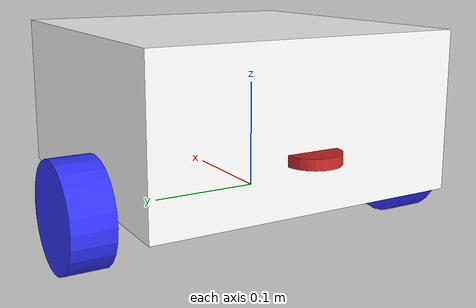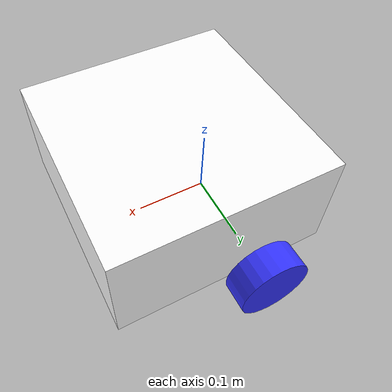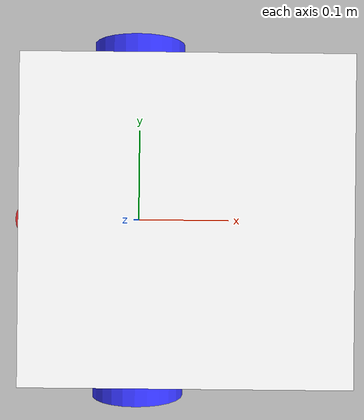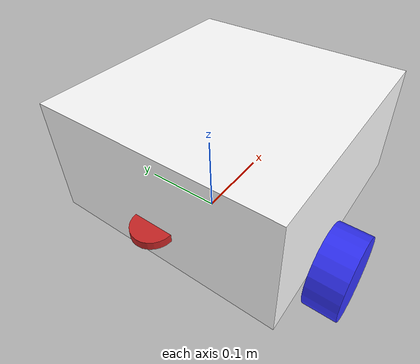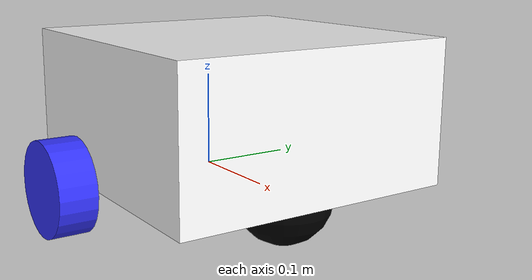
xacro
<?xml version="1.0"?>
<robot xmlns:xacro="http://www.ros.org/wiki/xacro"  name="robot">

    <xacro:include filename="robot_core.xacro" />

    <xacro:include filename="gazebo_control.xacro" />
    <xacro:include filename="lidar.xacro" />

</robot>

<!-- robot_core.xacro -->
<robot xmlns:xacro="http://www.ros.org/wiki/xacro"  name="robot">

    <xacro:include filename="inertial_macros.xacro" />

    <material name="white">
        <color rgba="1 1 1 1"/>
    </material>

    <material name="orange">
        <color rgba="1 0.3 0.1 1"/>
    </material>

    <material name="blue">
        <color rgba="0.2 0.2 1 1"/>
    </material>

    <material name="black">
        <color rgba="0 0 0 1"/>
    </material>

    <link name="base_link">

    </link>

    <joint name="chassis_joint" type="fixed">
        <parent link="base_link"/>
        <child link="chassis"/>
        <origin xyz="-0.1 0 0"/>
    </joint>

    <link name="chassis">
        <visual>
            <origin xyz="0.15 0 0.075" rpy="0 0 0"/>
            <geometry>
                <box size="0.3 0.3 0.15"/>
            </geometry>
            <material name="white"/>
        </visual>
        <collision>
            <origin xyz="0.15 0 0.075" rpy="0 0 0"/>
            <geometry>
                <box size="0.3 0.3 0.15"/>
            </geometry>
            <material name="white"/>
        </collision>
        <xacro:inertial_box mass="0.5" x="0.3" y="0.3" z="0.15">
            <origin xyz="0.15 0 0.075" rpy="0 0 0"/>
        </xacro:inertial_box>
    </link>

    <gazebo reference="chassis">
        <material>Gazebo/White</material>
    </gazebo>

    <!-- LEFT WHEEL -->

    <joint name="left_wheel_joint" type="continuous">
        <parent link="base_link"/>
        <child link="left_wheel"/>
        <origin xyz="0 0.175 0" rpy="-${pi/2} 0 0"/>
        <axis xyz="0 0 1"/>
    </joint>

    <link name="left_wheel">
        <visual>
            <geometry>
                <cylinder length="0.04" radius="0.05" />/>
            </geometry>
            <material name="blue"/>
        </visual>
        <collision>
            <geometry>
                <cylinder length="0.04" radius="0.05" />/>
            </geometry>
            <material name="blue"/>
        </collision>
        <xacro:inertial_cylinder mass="0.1" length="0.05" radius="0.05">
            <origin xyz="0 0 0" rpy="0 0 0"/>
        </xacro:inertial_cylinder>
    </link>

    <gazebo reference="left_wheel">
        <material>Gazebo/Blue</material>
    </gazebo>

    <!-- RIGHT WHEEL -->

    <joint name="right_wheel_joint" type="continuous">
        <parent link="base_link"/>
        <child link="right_wheel"/>
        <origin xyz="0 -0.175 0" rpy="${pi/2} 0 0"/>
        <axis xyz="0 0 -1"/>
    </joint>

    <link name="right_wheel">
        <visual>
            <geometry>
                <cylinder length="0.04" radius="0.05" />/>
            </geometry>
            <material name="blue"/>
        </visual>
        <collision>
            <geometry>
                <cylinder length="0.04" radius="0.05" />/>
            </geometry>
            <material name="blue"/>
        </collision>
        <xacro:inertial_cylinder mass="0.1" length="0.05" radius="0.05">
            <origin xyz="0 0 0" rpy="0 0 0"/>
        </xacro:inertial_cylinder>
    </link>

    <gazebo reference="right_wheel">
        <material>Gazebo/Blue</material>
    </gazebo>

    <!-- CASTER WHEEL -->

    <joint name="caster_wheel_joint" type="fixed">
        <parent link="chassis"/>
        <child link="caster_wheel"/>
        <origin xyz="0.24 0 0" rpy="0 0 0"/>
    </joint>

    <link name="caster_wheel">
        <visual>
            <geometry>
                <sphere radius="0.05" />
            </geometry>
            <material name="black"/>
        </visual>
        <collision>
            <geometry>
                <sphere radius="0.05" />
            </geometry>
            <material name="black"/>
        </collision>
        <xacro:inertial_sphere mass="0.1" radius="0.05">
            <origin xyz="0 0 0" rpy="0 0 0"/>
        </xacro:inertial_sphere>
    </link>

    <gazebo reference="caster_wheel">
        <material>Gazebo/Black</material>
    </gazebo>

    <gazebo reference="caster_wheel">
        <material>Gazebo/Black</material>
        <mu1 value="0.001"/>
        <mu2 value="0.001"/>
    </gazebo>

</robot>

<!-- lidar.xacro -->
<robot xmlns:xacro="http://www.ros.org/wiki/xacro" >

    <joint name="laser_joint" type="fixed">
        <parent link="chassis"/>
        <child link="laser_frame"/>
        <origin xyz="0 0 0.05" rpy="0 0 0"/>
    </joint>

    <link name="laser_frame">
        <visual>
            <geometry>
                <cylinder radius="0.025" length="0.010"/>
            </geometry>
            <material name="red"/>
        </visual>
        <collision>
            <geometry>
                <cylinder radius="0.025" length="0.01"/>
            </geometry>
        </collision>
        <xacro:inertial_cylinder mass="0.2" length="0.01" radius="0.025">
            <origin xyz="0 0 0" rpy="0 0 0"/>
        </xacro:inertial_cylinder>
    </link>

    <gazebo reference="laser_frame">
        <material>Gazebo/Black</material>

        <sensor name="laser" type="ray">
            <pose> 0 0 0 0 0 0 </pose>
            <visualize>true</visualize>
            <update_rate>10</update_rate>
            <ray>
                <scan>
                    <horizontal>
                        <samples>360</samples>
                        <min_angle>-3.14</min_angle>
                        <max_angle>3.14</max_angle>
                    </horizontal>
                </scan>
                <range>
                    <min>0.3</min>
                    <max>12</max>
                </range>
            </ray>
            <plugin name="laser_controller" filename="libgazebo_ros_ray_sensor.so">
                <ros>
                    <argument>--ros-args --remap ~/out:=scan</argument>
                </ros>
                <output_type>sensor_msgs/LaserScan</output_type>
                <frame_name>laser_frame</frame_name>
            </plugin>
        </sensor>
    </gazebo>

</robot>
